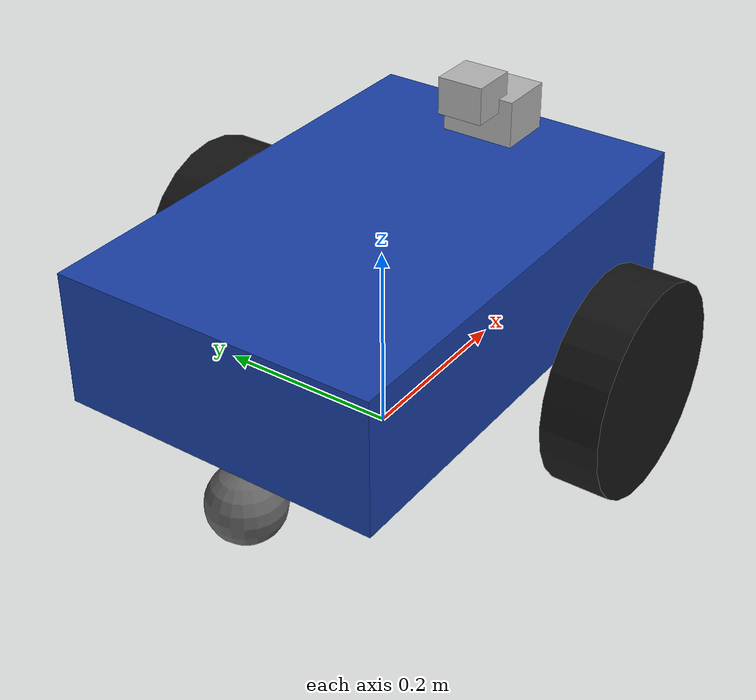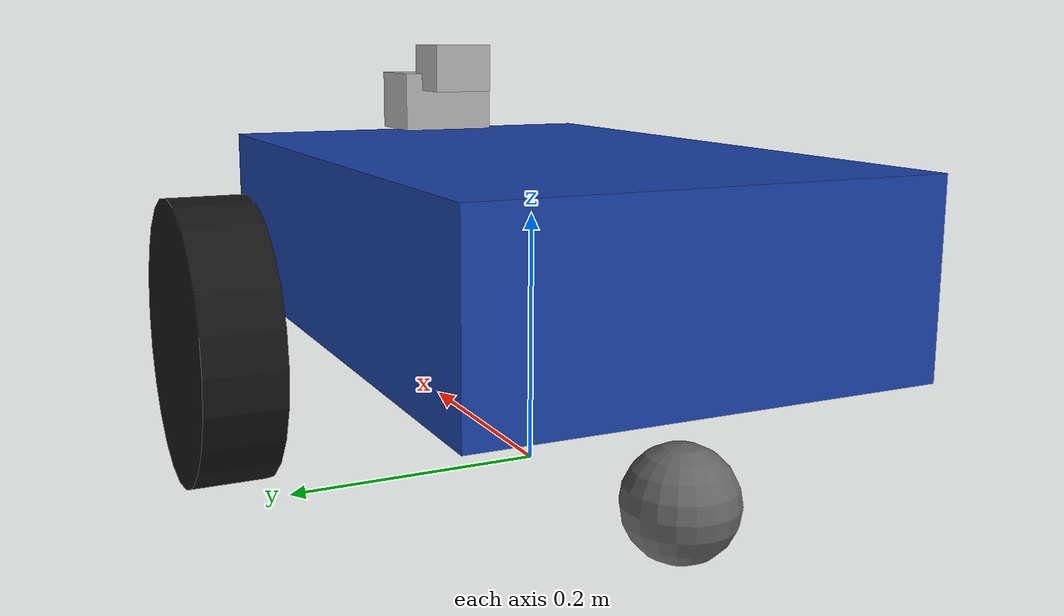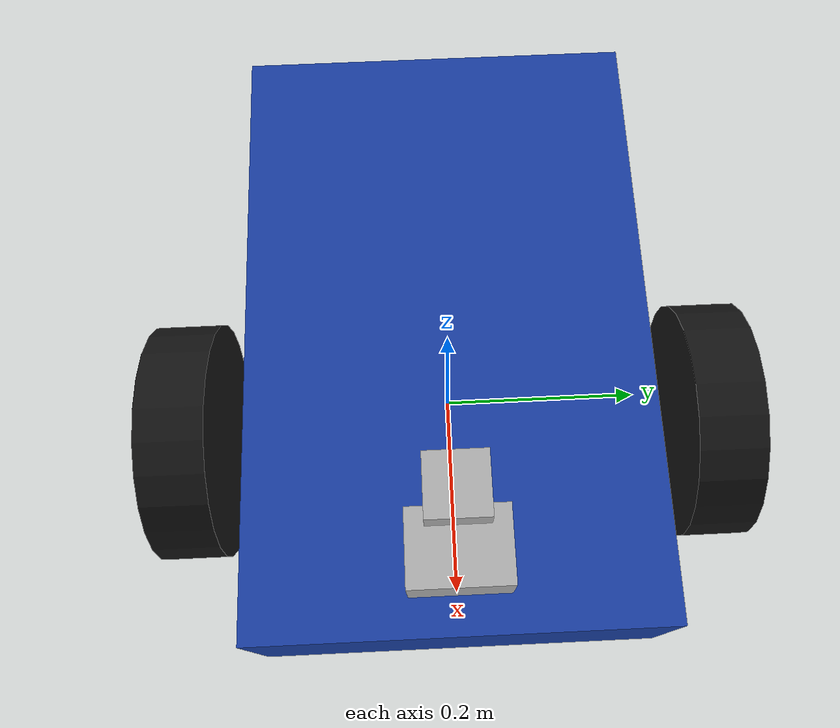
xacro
<?xml version="1.0"?>
<robot name="my_robot" xmlns:xacro="http://www.ros.org/wiki/xacro">

  <!-- Dimensions -->
  <xacro:property name="chassis_length" value="0.52"/>
  <xacro:property name="chassis_width"  value="0.34"/>
  <xacro:property name="chassis_height" value="0.14"/>

  <xacro:property name="wheel_radius" value="0.11"/>
  <xacro:property name="wheel_width"  value="0.06"/>
  <xacro:property name="wheel_y_offset" value="0.24"/>

  <xacro:property name="camera_box_x" value="0.06"/>
  <xacro:property name="camera_box_y" value="0.08"/>
  <xacro:property name="camera_box_z" value="0.05"/>

  <xacro:property name="laser_box_x" value="0.05"/>
  <xacro:property name="laser_box_y" value="0.05"/>
  <xacro:property name="laser_box_z" value="0.04"/>

  <xacro:property name="caster_radius" value="0.04"/>

  <xacro:property name="wheel_x_offset" value="0.06"/>
  <xacro:property name="caster_x_offset" value="-0.22"/>

  <!-- Masses -->
  <xacro:property name="base_mass" value="12.0"/>
  <xacro:property name="wheel_mass" value="1.0"/>
  <xacro:property name="caster_mass" value="0.4"/>
  <xacro:property name="sensor_mass" value="0.2"/>

  <material name="body_blue">
    <color rgba="0.10 0.25 0.65 1.0"/>
  </material>

  <material name="wheel_black">
    <color rgba="0.08 0.08 0.08 1.0"/>
  </material>

  <material name="sensor_gray">
    <color rgba="0.70 0.70 0.70 1.0"/>
  </material>

  <material name="caster_gray">
    <color rgba="0.40 0.40 0.40 1.0"/>
  </material>

  <xacro:macro name="box_inertia" params="m x y z">
    <inertial>
      <mass value="${m}"/>
      <origin xyz="0 0 0" rpy="0 0 0"/>
      <inertia
        ixx="${(m/12.0) * (y*y + z*z)}"
        ixy="0.0"
        ixz="0.0"
        iyy="${(m/12.0) * (x*x + z*z)}"
        iyz="0.0"
        izz="${(m/12.0) * (x*x + y*y)}"/>
    </inertial>
  </xacro:macro>

  <xacro:macro name="cylinder_inertia" params="m r l">
    <inertial>
      <mass value="${m}"/>
      <origin xyz="0 0 0" rpy="0 0 0"/>
      <inertia
        ixx="${(m/12.0) * (3*r*r + l*l)}"
        ixy="0.0"
        ixz="0.0"
        iyy="${(m/12.0) * (3*r*r + l*l)}"
        iyz="0.0"
        izz="${0.5 * m * r * r}"/>
    </inertial>
  </xacro:macro>

  <link name="base_footprint"/>

  <joint name="base_footprint_joint" type="fixed">
    <parent link="base_footprint"/>
    <child link="base_link"/>
    <origin xyz="0 0 ${wheel_radius + chassis_height/2.0}" rpy="0 0 0"/>
  </joint>

  <link name="base_link">
    <visual>
      <origin xyz="0 0 0" rpy="0 0 0"/>
      <geometry>
        <box size="${chassis_length} ${chassis_width} ${chassis_height}"/>
      </geometry>
      <material name="body_blue"/>
    </visual>

    <collision>
      <origin xyz="0 0 0" rpy="0 0 0"/>
      <geometry>
        <box size="${chassis_length} ${chassis_width} ${chassis_height}"/>
      </geometry>
    </collision>

    <xacro:box_inertia
      m="${base_mass}"
      x="${chassis_length}"
      y="${chassis_width}"
      z="${chassis_height}"/>
  </link>

  <link name="left_wheel_link">
    <visual>
      <origin xyz="0 0 0" rpy="${pi/2.0} 0 0"/>
      <geometry>
        <cylinder radius="${wheel_radius}" length="${wheel_width}"/>
      </geometry>
      <material name="wheel_black"/>
    </visual>

    <collision>
      <origin xyz="0 0 0" rpy="${pi/2.0} 0 0"/>
      <geometry>
        <cylinder radius="${wheel_radius}" length="${wheel_width}"/>
      </geometry>
    </collision>

    <xacro:cylinder_inertia
      m="${wheel_mass}"
      r="${wheel_radius}"
      l="${wheel_width}"/>
  </link>

  <joint name="left_wheel_joint" type="continuous">
    <parent link="base_link"/>
    <child link="left_wheel_link"/>
    <origin xyz="${wheel_x_offset} ${wheel_y_offset} ${-chassis_height/2.0}" rpy="0 0 0"/>
    <axis xyz="0 1 0"/>
  </joint>

  <link name="right_wheel_link">
    <visual>
      <origin xyz="0 0 0" rpy="${pi/2.0} 0 0"/>
      <geometry>
        <cylinder radius="${wheel_radius}" length="${wheel_width}"/>
      </geometry>
      <material name="wheel_black"/>
    </visual>

    <collision>
      <origin xyz="0 0 0" rpy="${pi/2.0} 0 0"/>
      <geometry>
        <cylinder radius="${wheel_radius}" length="${wheel_width}"/>
      </geometry>
    </collision>

    <xacro:cylinder_inertia
      m="${wheel_mass}"
      r="${wheel_radius}"
      l="${wheel_width}"/>
  </link>

  <joint name="right_wheel_joint" type="continuous">
    <parent link="base_link"/>
    <child link="right_wheel_link"/>
    <origin xyz="${wheel_x_offset} ${-wheel_y_offset} ${-chassis_height/2.0}" rpy="0 0 0"/>
    <axis xyz="0 1 0"/>
  </joint>

  <link name="caster_link">
    <visual>
      <geometry>
        <sphere radius="${caster_radius}"/>
      </geometry>
      <material name="caster_gray"/>
    </visual>

    <collision>
      <geometry>
        <sphere radius="${caster_radius}"/>
      </geometry>
    </collision>

    <inertial>
      <mass value="${caster_mass}"/>
      <origin xyz="0 0 0" rpy="0 0 0"/>
      <inertia ixx="0.0005" ixy="0" ixz="0" iyy="0.0005" iyz="0" izz="0.0005"/>
    </inertial>
  </link>

  <joint name="caster_joint" type="fixed">
    <parent link="base_link"/>
    <child link="caster_link"/>
    <origin xyz="${caster_x_offset} 0 ${-(chassis_height/2.0 + wheel_radius - caster_radius)}" rpy="0 0 0"/>
  </joint>

  <link name="camera_link">
    <visual>
      <geometry>
        <box size="${camera_box_x} ${camera_box_y} ${camera_box_z}"/>
      </geometry>
      <material name="sensor_gray"/>
    </visual>

    <collision>
      <geometry>
        <box size="${camera_box_x} ${camera_box_y} ${camera_box_z}"/>
      </geometry>
    </collision>

    <xacro:box_inertia
      m="${sensor_mass}"
      x="${camera_box_x}"
      y="${camera_box_y}"
      z="${camera_box_z}"/>
  </link>

  <joint name="camera_joint" type="fixed">
    <parent link="base_link"/>
    <child link="camera_link"/>
    <origin xyz="0.20 0 0.10" rpy="0 0 0"/>
  </joint>

  <link name="camera_optical_link"/>

  <joint name="camera_optical_joint" type="fixed">
    <parent link="camera_link"/>
    <child link="camera_optical_link"/>
    <origin xyz="0 0 0" rpy="${-pi/2.0} 0 ${-pi/2.0}"/>
  </joint>

  <link name="laser_link">
    <visual>
      <geometry>
        <box size="${laser_box_x} ${laser_box_y} ${laser_box_z}"/>
      </geometry>
      <material name="sensor_gray"/>
    </visual>

    <collision>
      <geometry>
        <box size="${laser_box_x} ${laser_box_y} ${laser_box_z}"/>
      </geometry>
    </collision>

    <xacro:box_inertia
      m="${sensor_mass}"
      x="${laser_box_x}"
      y="${laser_box_y}"
      z="${laser_box_z}"/>
  </link>

  <joint name="laser_joint" type="fixed">
    <parent link="base_link"/>
    <child link="laser_link"/>
    <origin xyz="0.16 0 0.13" rpy="0 0 0"/>
  </joint>

  <xacro:include filename="$(find my_robot)/urdf/my_robot.gazebo"/>
  <xacro:my_robot_gazebo/>

</robot>
